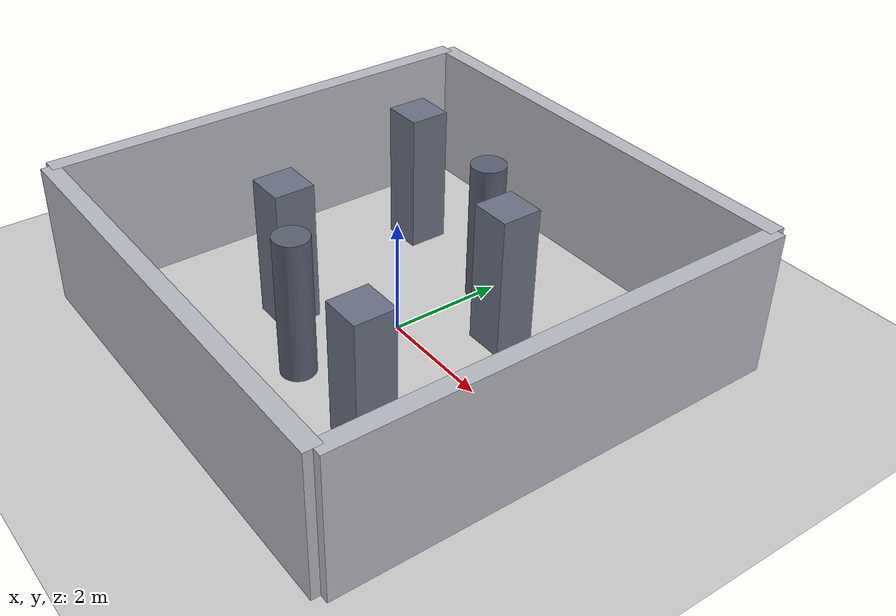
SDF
<?xml version="1.0"?>
<sdf version="1.6">
  <world name="uav_world_dense">

    <physics type="ode">
      <max_step_size>0.004</max_step_size>
      <real_time_factor>0.8</real_time_factor>
    </physics>

    <include><uri>model://sun</uri></include>
    <include><uri>model://ground_plane</uri></include>

    <!-- 8m x 8m 场地 -->
    <model name="wall_north">
      <static>true</static>
      <pose>0 4.0 1.25 0 0 0</pose>
      <link name="link">
        <collision name="col"><geometry><box><size>8.0 0.3 2.5</size></box></geometry></collision>
        <visual name="vis">
          <geometry><box><size>8.0 0.3 2.5</size></box></geometry>
          <material><ambient>0.55 0.56 0.6 1</ambient><diffuse>0.72 0.73 0.76 1</diffuse></material>
        </visual>
      </link>
    </model>

    <model name="wall_south">
      <static>true</static>
      <pose>0 -4.0 1.25 0 0 0</pose>
      <link name="link">
        <collision name="col"><geometry><box><size>8.0 0.3 2.5</size></box></geometry></collision>
        <visual name="vis">
          <geometry><box><size>8.0 0.3 2.5</size></box></geometry>
          <material><ambient>0.55 0.56 0.6 1</ambient><diffuse>0.72 0.73 0.76 1</diffuse></material>
        </visual>
      </link>
    </model>

    <model name="wall_east">
      <static>true</static>
      <pose>4.0 0 1.25 0 0 0</pose>
      <link name="link">
        <collision name="col"><geometry><box><size>0.3 8.0 2.5</size></box></geometry></collision>
        <visual name="vis">
          <geometry><box><size>0.3 8.0 2.5</size></box></geometry>
          <material><ambient>0.55 0.56 0.6 1</ambient><diffuse>0.72 0.73 0.76 1</diffuse></material>
        </visual>
      </link>
    </model>

    <model name="wall_west">
      <static>true</static>
      <pose>-4.0 0 1.25 0 0 0</pose>
      <link name="link">
        <collision name="col"><geometry><box><size>0.3 8.0 2.5</size></box></geometry></collision>
        <visual name="vis">
          <geometry><box><size>0.3 8.0 2.5</size></box></geometry>
          <material><ambient>0.55 0.56 0.6 1</ambient><diffuse>0.72 0.73 0.76 1</diffuse></material>
        </visual>
      </link>
    </model>

    <!-- 密集障碍：4 个方块 + 2 根柱子 -->
    <model name="block_a">
      <static>true</static>
      <pose>1.2 1.2 1.25 0 0 0</pose>
      <link name="link">
        <collision name="col"><geometry><box><size>0.7 0.7 2.5</size></box></geometry></collision>
        <visual name="vis"><geometry><box><size>0.7 0.7 2.5</size></box></geometry>
          <material><ambient>0.3 0.32 0.38 1</ambient><diffuse>0.42 0.45 0.52 1</diffuse></material></visual>
      </link>
    </model>

    <model name="block_b">
      <static>true</static>
      <pose>-1.4 -1.2 1.25 0 0 0</pose>
      <link name="link">
        <collision name="col"><geometry><box><size>0.7 0.7 2.5</size></box></geometry></collision>
        <visual name="vis"><geometry><box><size>0.7 0.7 2.5</size></box></geometry>
          <material><ambient>0.3 0.32 0.38 1</ambient><diffuse>0.42 0.45 0.52 1</diffuse></material></visual>
      </link>
    </model>

    <model name="block_c">
      <static>true</static>
      <pose>2.0 -2.0 1.25 0 0 0</pose>
      <link name="link">
        <collision name="col"><geometry><box><size>0.7 0.7 2.5</size></box></geometry></collision>
        <visual name="vis"><geometry><box><size>0.7 0.7 2.5</size></box></geometry>
          <material><ambient>0.3 0.32 0.38 1</ambient><diffuse>0.42 0.45 0.52 1</diffuse></material></visual>
      </link>
    </model>

    <model name="block_d">
      <static>true</static>
      <pose>-2.2 2.0 1.25 0 0 0</pose>
      <link name="link">
        <collision name="col"><geometry><box><size>0.7 0.7 2.5</size></box></geometry></collision>
        <visual name="vis"><geometry><box><size>0.7 0.7 2.5</size></box></geometry>
          <material><ambient>0.3 0.32 0.38 1</ambient><diffuse>0.42 0.45 0.52 1</diffuse></material></visual>
      </link>
    </model>

    <model name="pillar_x">
      <static>true</static>
      <pose>0.0 1.8 1.25 0 0 0</pose>
      <link name="link">
        <collision name="col"><geometry><cylinder><radius>0.3</radius><length>2.5</length></cylinder></geometry></collision>
        <visual name="vis"><geometry><cylinder><radius>0.3</radius><length>2.5</length></cylinder></geometry>
          <material><ambient>0.25 0.27 0.33 1</ambient><diffuse>0.36 0.38 0.45 1</diffuse></material></visual>
      </link>
    </model>

    <model name="pillar_y">
      <static>true</static>
      <pose>0.0 -1.9 1.25 0 0 0</pose>
      <link name="link">
        <collision name="col"><geometry><cylinder><radius>0.3</radius><length>2.5</length></cylinder></geometry></collision>
        <visual name="vis"><geometry><cylinder><radius>0.3</radius><length>2.5</length></cylinder></geometry>
          <material><ambient>0.25 0.27 0.33 1</ambient><diffuse>0.36 0.38 0.45 1</diffuse></material></visual>
      </link>
    </model>

    <gui fullscreen="0">
      <camera name="user_camera">
        <pose>-8 -8 6 0 0.35 0.78</pose>
      </camera>
    </gui>

  </world>
</sdf>
